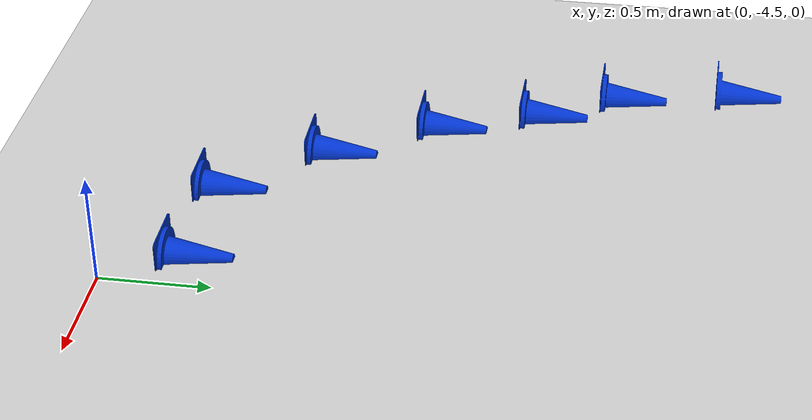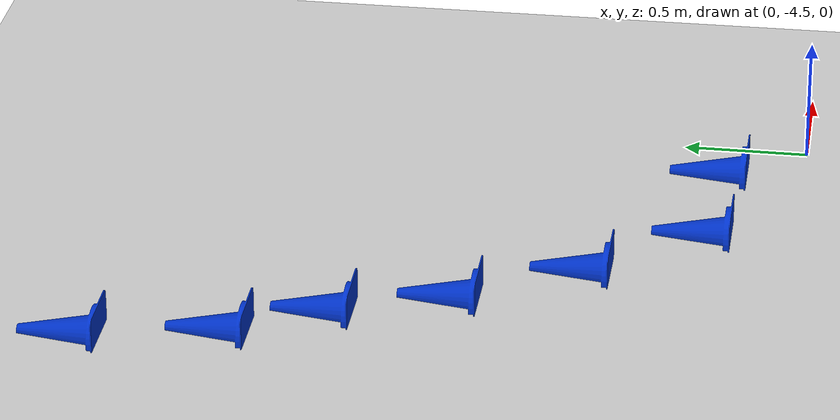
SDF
<sdf version="1.7">
 <world name="default">
  <model name="ground_plane">
   <static>1</static>
   <link name="link">
    <collision name="collision">
     <geometry><plane><normal>0 0 1</normal><size>100 100</size></plane></geometry>
     <surface><friction><ode><mu>100</mu><mu2>50</mu2></ode></friction></surface>
    </collision>
    <visual name="visual">
     <cast_shadows>0</cast_shadows>
     <geometry><plane><normal>0 0 1</normal><size>100 100</size></plane></geometry>
     <material>
      <script><uri>file://media/materials/scripts/gazebo.material</uri><name>Gazebo/Grey</name></script>
     </material>
    </visual>
   </link>
  </model>
  <model name="cone_yellow_3">
   <static>1</static>
   <link name="link">
    <visual name="visual">
     <geometry>
      <mesh><uri>model://cone_yellow/meshes/cone.stl</uri><scale>0.001 0.001 0.001</scale></mesh>
     </geometry>
     <material><ambient>1 0.82 0 1</ambient><diffuse>1 0.82 0 1</diffuse></material>
    </visual>
    <collision name="collision">
     <geometry>
      <mesh><uri>model://cone_yellow/meshes/cone.stl</uri><scale>0.001 0.001 0.001</scale></mesh>
     </geometry>
    </collision>
    <inertial>
     <mass>0.1</mass>
     <inertia><ixx>0.0001</ixx><iyy>0.0001</iyy><izz>0.0001</izz><ixy>0</ixy><ixz>0</ixz><iyz>0</iyz></inertia>
    </inertial>
   </link>
   <pose>-0.316793 -3.18623 0 0 -0 0</pose>
  </model>
  <model name="cone_yellow_4">
   <static>1</static>
   <link name="link">
    <visual name="visual">
     <geometry>
      <mesh><uri>model://cone_yellow/meshes/cone.stl</uri><scale>0.001 0.001 0.001</scale></mesh>
     </geometry>
     <material><ambient>1 0.82 0 1</ambient><diffuse>1 0.82 0 1</diffuse></material>
    </visual>
    <collision name="collision">
     <geometry>
      <mesh><uri>model://cone_yellow/meshes/cone.stl</uri><scale>0.001 0.001 0.001</scale></mesh>
     </geometry>
    </collision>
    <inertial>
     <mass>0.1</mass>
     <inertia><ixx>0.0001</ixx><iyy>0.0001</iyy><izz>0.0001</izz><ixy>0</ixy><ixz>0</ixz><iyz>0</iyz></inertia>
    </inertial>
   </link>
   <pose>-0.478126 -2.82781 0 0 -0 0</pose>
  </model>
  <model name="cone_yellow_5">
   <static>1</static>
   <link name="link">
    <visual name="visual">
     <geometry>
      <mesh><uri>model://cone_yellow/meshes/cone.stl</uri><scale>0.001 0.001 0.001</scale></mesh>
     </geometry>
     <material><ambient>1 0.82 0 1</ambient><diffuse>1 0.82 0 1</diffuse></material>
    </visual>
    <collision name="collision">
     <geometry>
      <mesh><uri>model://cone_yellow/meshes/cone.stl</uri><scale>0.001 0.001 0.001</scale></mesh>
     </geometry>
    </collision>
    <inertial>
     <mass>0.1</mass>
     <inertia><ixx>0.0001</ixx><iyy>0.0001</iyy><izz>0.0001</izz><ixy>0</ixy><ixz>0</ixz><iyz>0</iyz></inertia>
    </inertial>
   </link>
   <pose>-0.599837 -2.43794 0 0 -0 0</pose>
  </model>
  <model name="cone_blue_3">
   <static>1</static>
   <link name="link">
    <visual name="visual">
     <geometry><mesh><uri>model://cone_blue/meshes/cone.stl</uri><scale>0.001 0.001 0.001</scale></mesh></geometry>
     <material><ambient>0 0.2 0.8 1</ambient><diffuse>0 0.2 0.8 1</diffuse></material>
    </visual>
    <collision name="collision">
     <geometry><mesh><uri>model://cone_blue/meshes/cone.stl</uri><scale>0.001 0.001 0.001</scale></mesh></geometry>
    </collision>
    <inertial>
     <mass>0.1</mass>
     <inertia><ixx>0.0001</ixx><iyy>0.0001</iyy><izz>0.0001</izz><ixy>0</ixy><ixz>0</ixz><iyz>0</iyz></inertia>
    </inertial>
   </link>
   <pose>-0.21719 -4.24456 0 0 -0 0</pose>
  </model>
  <model name="cone_blue_4">
   <static>1</static>
   <link name="link">
    <visual name="visual">
     <geometry><mesh><uri>model://cone_blue/meshes/cone.stl</uri><scale>0.001 0.001 0.001</scale></mesh></geometry>
     <material><ambient>0 0.2 0.8 1</ambient><diffuse>0 0.2 0.8 1</diffuse></material>
    </visual>
    <collision name="collision">
     <geometry><mesh><uri>model://cone_blue/meshes/cone.stl</uri><scale>0.001 0.001 0.001</scale></mesh></geometry>
    </collision>
    <inertial>
     <mass>0.1</mass>
     <inertia><ixx>0.0001</ixx><iyy>0.0001</iyy><izz>0.0001</izz><ixy>0</ixy><ixz>0</ixz><iyz>0</iyz></inertia>
    </inertial>
   </link>
   <pose>-0.754826 -4.21696 0 0 -0 0</pose>
  </model>
  <model name="cone_blue_5">
   <static>1</static>
   <link name="link">
    <visual name="visual">
     <geometry><mesh><uri>model://cone_blue/meshes/cone.stl</uri><scale>0.001 0.001 0.001</scale></mesh></geometry>
     <material><ambient>0 0.2 0.8 1</ambient><diffuse>0 0.2 0.8 1</diffuse></material>
    </visual>
    <collision name="collision">
     <geometry><mesh><uri>model://cone_blue/meshes/cone.stl</uri><scale>0.001 0.001 0.001</scale></mesh></geometry>
    </collision>
    <inertial>
     <mass>0.1</mass>
     <inertia><ixx>0.0001</ixx><iyy>0.0001</iyy><izz>0.0001</izz><ixy>0</ixy><ixz>0</ixz><iyz>0</iyz></inertia>
    </inertial>
   </link>
   <pose>-1.11661 -3.7742 0 0 -0 0</pose>
  </model>
  <model name="cone_blue_6">
   <static>1</static>
   <link name="link">
    <visual name="visual">
     <geometry><mesh><uri>model://cone_blue/meshes/cone.stl</uri><scale>0.001 0.001 0.001</scale></mesh></geometry>
     <material><ambient>0 0.2 0.8 1</ambient><diffuse>0 0.2 0.8 1</diffuse></material>
    </visual>
    <collision name="collision">
     <geometry><mesh><uri>model://cone_blue/meshes/cone.stl</uri><scale>0.001 0.001 0.001</scale></mesh></geometry>
    </collision>
    <inertial>
     <mass>0.1</mass>
     <inertia><ixx>0.0001</ixx><iyy>0.0001</iyy><izz>0.0001</izz><ixy>0</ixy><ixz>0</ixz><iyz>0</iyz></inertia>
    </inertial>
   </link>
   <pose>-1.39974 -3.29576 0 0 -0 0</pose>
  </model>
  <model name="cone_blue_7">
   <static>1</static>
   <link name="link">
    <visual name="visual">
     <geometry><mesh><uri>model://cone_blue/meshes/cone.stl</uri><scale>0.001 0.001 0.001</scale></mesh></geometry>
     <material><ambient>0 0.2 0.8 1</ambient><diffuse>0 0.2 0.8 1</diffuse></material>
    </visual>
    <collision name="collision">
     <geometry><mesh><uri>model://cone_blue/meshes/cone.stl</uri><scale>0.001 0.001 0.001</scale></mesh></geometry>
    </collision>
    <inertial>
     <mass>0.1</mass>
     <inertia><ixx>0.0001</ixx><iyy>0.0001</iyy><izz>0.0001</izz><ixy>0</ixy><ixz>0</ixz><iyz>0</iyz></inertia>
    </inertial>
   </link>
   <pose>-1.56817 -2.83258 0 0 -0 0</pose>
  </model>
  <model name="cone_blue_8">
   <static>1</static>
   <link name="link">
    <visual name="visual">
     <geometry><mesh><uri>model://cone_blue/meshes/cone.stl</uri><scale>0.001 0.001 0.001</scale></mesh></geometry>
     <material><ambient>0 0.2 0.8 1</ambient><diffuse>0 0.2 0.8 1</diffuse></material>
    </visual>
    <collision name="collision">
     <geometry><mesh><uri>model://cone_blue/meshes/cone.stl</uri><scale>0.001 0.001 0.001</scale></mesh></geometry>
    </collision>
    <inertial>
     <mass>0.1</mass>
     <inertia><ixx>0.0001</ixx><iyy>0.0001</iyy><izz>0.0001</izz><ixy>0</ixy><ixz>0</ixz><iyz>0</iyz></inertia>
    </inertial>
   </link>
   <pose>-1.7736 -2.46659 0 0 -0 0</pose>
  </model>
  <model name="cone_yellow_6">
   <static>1</static>
   <link name="link">
    <visual name="visual">
     <geometry>
      <mesh><uri>model://cone_yellow/meshes/cone.stl</uri><scale>0.001 0.001 0.001</scale></mesh>
     </geometry>
     <material><ambient>1 0.82 0 1</ambient><diffuse>1 0.82 0 1</diffuse></material>
    </visual>
    <collision name="collision">
     <geometry>
      <mesh><uri>model://cone_yellow/meshes/cone.stl</uri><scale>0.001 0.001 0.001</scale></mesh>
     </geometry>
    </collision>
    <inertial>
     <mass>0.1</mass>
     <inertia><ixx>0.0001</ixx><iyy>0.0001</iyy><izz>0.0001</izz><ixy>0</ixy><ixz>0</ixz><iyz>0</iyz></inertia>
    </inertial>
   </link>
   <pose>-0.707955 -1.98891 0 0 -0 0</pose>
  </model>
  <model name="cone_blue_9">
   <static>1</static>
   <link name="link">
    <visual name="visual">
     <geometry><mesh><uri>model://cone_blue/meshes/cone.stl</uri><scale>0.001 0.001 0.001</scale></mesh></geometry>
     <material><ambient>0 0.2 0.8 1</ambient><diffuse>0 0.2 0.8 1</diffuse></material>
    </visual>
    <collision name="collision">
     <geometry><mesh><uri>model://cone_blue/meshes/cone.stl</uri><scale>0.001 0.001 0.001</scale></mesh></geometry>
    </collision>
    <inertial>
     <mass>0.1</mass>
     <inertia><ixx>0.0001</ixx><iyy>0.0001</iyy><izz>0.0001</izz><ixy>0</ixy><ixz>0</ixz><iyz>0</iyz></inertia>
    </inertial>
   </link>
   <pose>-1.87281 -1.91789 0 0 -0 0</pose>
  </model>
 </world>
</sdf>
